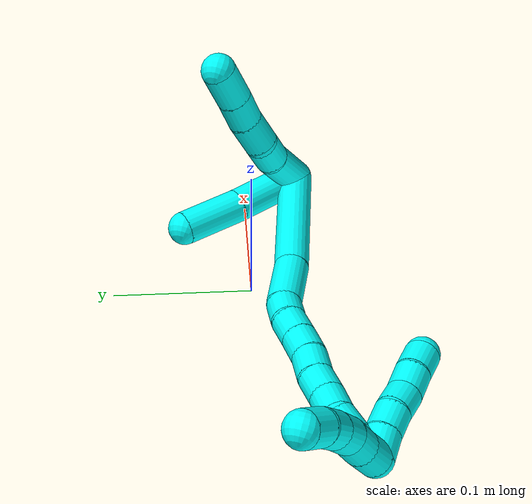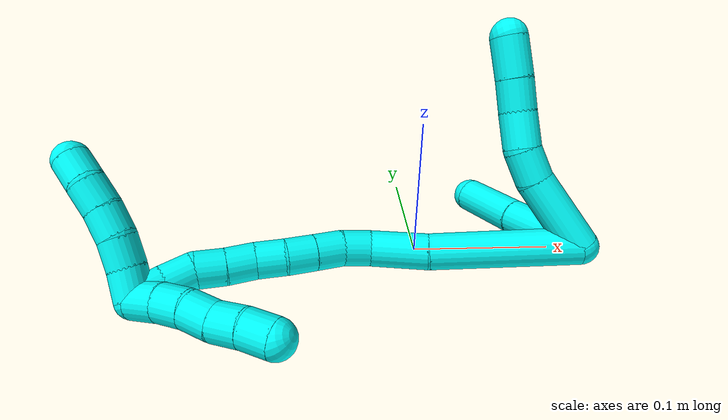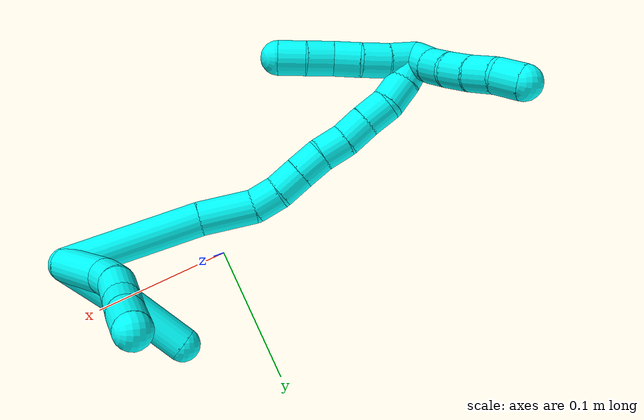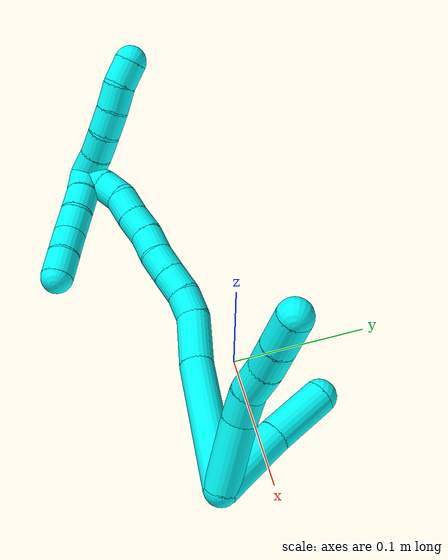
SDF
<sdf version="1.7">
 <world name="default">
  <model name="3">
   <static>0</static>
   <link name="3">
    <collision name="collision-cylinder-e_1_2_8">
     <pose>-0.024356 -0.008097 -0.005781 2.19084 -1.18299 -1.83388</pose>
     <geometry><cylinder><radius>0.0125</radius><length>0.05262</length></cylinder></geometry>
     <surface>
      <friction><ode><mu>1.16</mu><mu2>1.16</mu2><slip1>0</slip1><slip2>0</slip2></ode></friction>
      <contact><ode><kp>1e+06</kp><kd>1</kd><max_vel>0</max_vel><min_depth>0.001</min_depth></ode></contact>
     </surface>
    </collision>
    <visual name="visual-cylinder-e_1_2_8">
     <pose>-0.024356 -0.008097 -0.005781 2.19084 -1.18299 -1.83388</pose>
     <geometry><cylinder><radius>0.0125</radius><length>0.05262</length></cylinder></geometry>
     <material><ambient>0.003922 1 0.996078 1</ambient></material>
    </visual>
    <collision name="collision-cylinder-e_2_8_9">
     <pose>-0.059469 -0.019418 -0.01169 1.61044 -1.27941 -1.3176</pose>
     <geometry><cylinder><radius>0.0125</radius><length>0.022459</length></cylinder></geometry>
     <surface>
      <friction><ode><mu>1.16</mu><mu2>1.16</mu2><slip1>0</slip1><slip2>0</slip2></ode></friction>
      <contact><ode><kp>1e+06</kp><kd>1</kd><max_vel>0</max_vel><min_depth>0.001</min_depth></ode></contact>
     </surface>
    </collision>
    <visual name="visual-cylinder-e_2_8_9">
     <pose>-0.059469 -0.019418 -0.01169 1.61044 -1.27941 -1.3176</pose>
     <geometry><cylinder><radius>0.0125</radius><length>0.022459</length></cylinder></geometry>
     <material><ambient>0.003922 1 0.996078 1</ambient></material>
    </visual>
    <collision name="collision-cylinder-e_3_9_10">
     <pose>-0.082516 -0.023604 -0.009405 0.379331 -1.36244 -0.30878</pose>
     <geometry><cylinder><radius>0.0125</radius><length>0.025124</length></cylinder></geometry>
     <surface>
      <friction><ode><mu>1.16</mu><mu2>1.16</mu2><slip1>0</slip1><slip2>0</slip2></ode></friction>
      <contact><ode><kp>1e+06</kp><kd>1</kd><max_vel>0</max_vel><min_depth>0.001</min_depth></ode></contact>
     </surface>
    </collision>
    <visual name="visual-cylinder-e_3_9_10">
     <pose>-0.082516 -0.023604 -0.009405 0.379331 -1.36244 -0.30878</pose>
     <geometry><cylinder><radius>0.0125</radius><length>0.025124</length></cylinder></geometry>
     <material><ambient>0.003922 1 0.996078 1</ambient></material>
    </visual>
    <collision name="collision-cylinder-e_4_10_11">
     <pose>-0.105323 -0.026638 -0.004401 0.674864 -1.26528 -0.503548</pose>
     <geometry><cylinder><radius>0.0125</radius><length>0.022054</length></cylinder></geometry>
     <surface>
      <friction><ode><mu>1.16</mu><mu2>1.16</mu2><slip1>0</slip1><slip2>0</slip2></ode></friction>
      <contact><ode><kp>1e+06</kp><kd>1</kd><max_vel>0</max_vel><min_depth>0.001</min_depth></ode></contact>
     </surface>
    </collision>
    <visual name="visual-cylinder-e_4_10_11">
     <pose>-0.105323 -0.026638 -0.004401 0.674864 -1.26528 -0.503548</pose>
     <geometry><cylinder><radius>0.0125</radius><length>0.022054</length></cylinder></geometry>
     <material><ambient>0.003922 1 0.996078 1</ambient></material>
    </visual>
    <collision name="collision-cylinder-e_5_11_6">
     <pose>-0.129223 -0.031133 0.00091 0.727377 -1.30501 -0.566096</pose>
     <geometry><cylinder><radius>0.0125</radius><length>0.027742</length></cylinder></geometry>
     <surface>
      <friction><ode><mu>1.16</mu><mu2>1.16</mu2><slip1>0</slip1><slip2>0</slip2></ode></friction>
      <contact><ode><kp>1e+06</kp><kd>1</kd><max_vel>0</max_vel><min_depth>0.001</min_depth></ode></contact>
     </surface>
    </collision>
    <visual name="visual-cylinder-e_5_11_6">
     <pose>-0.129223 -0.031133 0.00091 0.727377 -1.30501 -0.566096</pose>
     <geometry><cylinder><radius>0.0125</radius><length>0.027742</length></cylinder></geometry>
     <material><ambient>0.003922 1 0.996078 1</ambient></material>
    </visual>
    <collision name="collision-cylinder-e_1_2_12">
     <pose>-0.015125 0.010306 -0.019944 -2.66465 -0.592885 1.79714</pose>
     <geometry><cylinder><radius>0.0125</radius><length>0.054139</length></cylinder></geometry>
     <surface>
      <friction><ode><mu>1.16</mu><mu2>1.16</mu2><slip1>0</slip1><slip2>0</slip2></ode></friction>
      <contact><ode><kp>1e+06</kp><kd>1</kd><max_vel>0</max_vel><min_depth>0.001</min_depth></ode></contact>
     </surface>
    </collision>
    <visual name="visual-cylinder-e_1_2_12">
     <pose>-0.015125 0.010306 -0.019944 -2.66465 -0.592885 1.79714</pose>
     <geometry><cylinder><radius>0.0125</radius><length>0.054139</length></cylinder></geometry>
     <material><ambient>0.003922 1 0.996078 1</ambient></material>
    </visual>
    <collision name="collision-cylinder-e_2_12_5">
     <pose>-0.043375 0.030543 -0.055855 -2.58515 -0.609393 1.66691</pose>
     <geometry><cylinder><radius>0.0125</radius><length>0.045861</length></cylinder></geometry>
     <surface>
      <friction><ode><mu>1.16</mu><mu2>1.16</mu2><slip1>0</slip1><slip2>0</slip2></ode></friction>
      <contact><ode><kp>1e+06</kp><kd>1</kd><max_vel>0</max_vel><min_depth>0.001</min_depth></ode></contact>
     </surface>
    </collision>
    <visual name="visual-cylinder-e_2_12_5">
     <pose>-0.043375 0.030543 -0.055855 -2.58515 -0.609393 1.66691</pose>
     <geometry><cylinder><radius>0.0125</radius><length>0.045861</length></cylinder></geometry>
     <material><ambient>0.003922 1 0.996078 1</ambient></material>
    </visual>
    <collision name="collision-cylinder-e_1_2_13">
     <pose>-0.010164 -0.020271 -0.044166 2.7113 -0.206176 -0.884308</pose>
     <geometry><cylinder><radius>0.0125</radius><length>0.099294</length></cylinder></geometry>
     <surface>
      <friction><ode><mu>1.16</mu><mu2>1.16</mu2><slip1>0</slip1><slip2>0</slip2></ode></friction>
      <contact><ode><kp>1e+06</kp><kd>1</kd><max_vel>0</max_vel><min_depth>0.001</min_depth></ode></contact>
     </surface>
    </collision>
    <visual name="visual-cylinder-e_1_2_13">
     <pose>-0.010164 -0.020271 -0.044166 2.7113 -0.206176 -0.884308</pose>
     <geometry><cylinder><radius>0.0125</radius><length>0.099294</length></cylinder></geometry>
     <material><ambient>0.003922 1 0.996078 1</ambient></material>
    </visual>
    <collision name="collision-cylinder-e_2_13_14">
     <pose>-0.02646 -0.047491 -0.106193 2.77056 -0.309664 -1.38751</pose>
     <geometry><cylinder><radius>0.0125</radius><length>0.040247</length></cylinder></geometry>
     <surface>
      <friction><ode><mu>1.16</mu><mu2>1.16</mu2><slip1>0</slip1><slip2>0</slip2></ode></friction>
      <contact><ode><kp>1e+06</kp><kd>1</kd><max_vel>0</max_vel><min_depth>0.001</min_depth></ode></contact>
     </surface>
    </collision>
    <visual name="visual-cylinder-e_2_13_14">
     <pose>-0.02646 -0.047491 -0.106193 2.77056 -0.309664 -1.38751</pose>
     <geometry><cylinder><radius>0.0125</radius><length>0.040247</length></cylinder></geometry>
     <material><ambient>0.003922 1 0.996078 1</ambient></material>
    </visual>
    <collision name="collision-cylinder-e_3_14_15">
     <pose>-0.034942 -0.060886 -0.131473 2.42621 -0.234699 -0.61107</pose>
     <geometry><cylinder><radius>0.0125</radius><length>0.020208</length></cylinder></geometry>
     <surface>
      <friction><ode><mu>1.16</mu><mu2>1.16</mu2><slip1>0</slip1><slip2>0</slip2></ode></friction>
      <contact><ode><kp>1e+06</kp><kd>1</kd><max_vel>0</max_vel><min_depth>0.001</min_depth></ode></contact>
     </surface>
    </collision>
    <visual name="visual-cylinder-e_3_14_15">
     <pose>-0.034942 -0.060886 -0.131473 2.42621 -0.234699 -0.61107</pose>
     <geometry><cylinder><radius>0.0125</radius><length>0.020208</length></cylinder></geometry>
     <material><ambient>0.003922 1 0.996078 1</ambient></material>
    </visual>
    <collision name="collision-cylinder-e_4_15_16">
     <pose>-0.03792 -0.074671 -0.14573 2.32092 -0.062553 -0.14359</pose>
     <geometry><cylinder><radius>0.0125</radius><length>0.020103</length></cylinder></geometry>
     <surface>
      <friction><ode><mu>1.16</mu><mu2>1.16</mu2><slip1>0</slip1><slip2>0</slip2></ode></friction>
      <contact><ode><kp>1e+06</kp><kd>1</kd><max_vel>0</max_vel><min_depth>0.001</min_depth></ode></contact>
     </surface>
    </collision>
    <visual name="visual-cylinder-e_4_15_16">
     <pose>-0.03792 -0.074671 -0.14573 2.32092 -0.062553 -0.14359</pose>
     <geometry><cylinder><radius>0.0125</radius><length>0.020103</length></cylinder></geometry>
     <material><ambient>0.003922 1 0.996078 1</ambient></material>
    </visual>
    <collision name="collision-cylinder-e_5_16_17">
     <pose>-0.039276 -0.089173 -0.159524 2.34151 -0.072796 -0.171811</pose>
     <geometry><cylinder><radius>0.0125</radius><length>0.020022</length></cylinder></geometry>
     <surface>
      <friction><ode><mu>1.16</mu><mu2>1.16</mu2><slip1>0</slip1><slip2>0</slip2></ode></friction>
      <contact><ode><kp>1e+06</kp><kd>1</kd><max_vel>0</max_vel><min_depth>0.001</min_depth></ode></contact>
     </surface>
    </collision>
    <visual name="visual-cylinder-e_5_16_17">
     <pose>-0.039276 -0.089173 -0.159524 2.34151 -0.072796 -0.171811</pose>
     <geometry><cylinder><radius>0.0125</radius><length>0.020022</length></cylinder></geometry>
     <material><ambient>0.003922 1 0.996078 1</ambient></material>
    </visual>
    <collision name="collision-cylinder-e_6_17_18">
     <pose>-0.04121 -0.10238 -0.1744 2.48972 -0.120476 -0.353163</pose>
     <geometry><cylinder><radius>0.0125</radius><length>0.020072</length></cylinder></geometry>
     <surface>
      <friction><ode><mu>1.16</mu><mu2>1.16</mu2><slip1>0</slip1><slip2>0</slip2></ode></friction>
      <contact><ode><kp>1e+06</kp><kd>1</kd><max_vel>0</max_vel><min_depth>0.001</min_depth></ode></contact>
     </surface>
    </collision>
    <visual name="visual-cylinder-e_6_17_18">
     <pose>-0.04121 -0.10238 -0.1744 2.48972 -0.120476 -0.353163</pose>
     <geometry><cylinder><radius>0.0125</radius><length>0.020072</length></cylinder></geometry>
     <material><ambient>0.003922 1 0.996078 1</ambient></material>
    </visual>
    <collision name="collision-cylinder-e_7_18_19">
     <pose>-0.042699 -0.115659 -0.189224 2.33281 -0.028276 -0.066049</pose>
     <geometry><cylinder><radius>0.0125</radius><length>0.020006</length></cylinder></geometry>
     <surface>
      <friction><ode><mu>1.16</mu><mu2>1.16</mu2><slip1>0</slip1><slip2>0</slip2></ode></friction>
      <contact><ode><kp>1e+06</kp><kd>1</kd><max_vel>0</max_vel><min_depth>0.001</min_depth></ode></contact>
     </surface>
    </collision>
    <visual name="visual-cylinder-e_7_18_19">
     <pose>-0.042699 -0.115659 -0.189224 2.33281 -0.028276 -0.066049</pose>
     <geometry><cylinder><radius>0.0125</radius><length>0.020006</length></cylinder></geometry>
     <material><ambient>0.003922 1 0.996078 1</ambient></material>
    </visual>
    <collision name="collision-cylinder-e_8_19_20">
     <pose>-0.044145 -0.12995 -0.203119 2.35151 -0.116502 -0.27792</pose>
     <geometry><cylinder><radius>0.0125</radius><length>0.020005</length></cylinder></geometry>
     <surface>
      <friction><ode><mu>1.16</mu><mu2>1.16</mu2><slip1>0</slip1><slip2>0</slip2></ode></friction>
      <contact><ode><kp>1e+06</kp><kd>1</kd><max_vel>0</max_vel><min_depth>0.001</min_depth></ode></contact>
     </surface>
    </collision>
    <visual name="visual-cylinder-e_8_19_20">
     <pose>-0.044145 -0.12995 -0.203119 2.35151 -0.116502 -0.27792</pose>
     <geometry><cylinder><radius>0.0125</radius><length>0.020005</length></cylinder></geometry>
     <material><ambient>0.003922 1 0.996078 1</ambient></material>
    </visual>
    <collision name="collision-cylinder-e_9_20_21">
     <pose>-0.043166 -0.144368 -0.216562 2.29054 0.21544 0.468445</pose>
     <geometry><cylinder><radius>0.0125</radius><length>0.020037</length></cylinder></geometry>
     <surface>
      <friction><ode><mu>1.16</mu><mu2>1.16</mu2><slip1>0</slip1><slip2>0</slip2></ode></friction>
      <contact><ode><kp>1e+06</kp><kd>1</kd><max_vel>0</max_vel><min_depth>0.001</min_depth></ode></contact>
     </surface>
    </collision>
    <visual name="visual-cylinder-e_9_20_21">
     <pose>-0.043166 -0.144368 -0.216562 2.29054 0.21544 0.468445</pose>
     <geometry><cylinder><radius>0.0125</radius><length>0.020037</length></cylinder></geometry>
     <material><ambient>0.003922 1 0.996078 1</ambient></material>
    </visual>
    <collision name="collision-cylinder-e_10_21_1">
     <pose>-0.03828 -0.159766 -0.228296 2.15216 0.277905 0.507327</pose>
     <geometry><cylinder><radius>0.0125</radius><length>0.020007</length></cylinder></geometry>
     <surface>
      <friction><ode><mu>1.16</mu><mu2>1.16</mu2><slip1>0</slip1><slip2>0</slip2></ode></friction>
      <contact><ode><kp>1e+06</kp><kd>1</kd><max_vel>0</max_vel><min_depth>0.001</min_depth></ode></contact>
     </surface>
    </collision>
    <visual name="visual-cylinder-e_10_21_1">
     <pose>-0.03828 -0.159766 -0.228296 2.15216 0.277905 0.507327</pose>
     <geometry><cylinder><radius>0.0125</radius><length>0.020007</length></cylinder></geometry>
     <material><ambient>0.003922 1 0.996078 1</ambient></material>
    </visual>
    <collision name="collision-cylinder-e_1_1_22">
     <pose>-0.045513 -0.168479 -0.233572 1.56022 -1.50338 -1.49283</pose>
     <geometry><cylinder><radius>0.0125</radius><length>0.02</length></cylinder></geometry>
     <surface>
      <friction><ode><mu>1.16</mu><mu2>1.16</mu2><slip1>0</slip1><slip2>0</slip2></ode></friction>
      <contact><ode><kp>1e+06</kp><kd>1</kd><max_vel>0</max_vel><min_depth>0.001</min_depth></ode></contact>
     </surface>
    </collision>
    <visual name="visual-cylinder-e_1_1_22">
     <pose>-0.045513 -0.168479 -0.233572 1.56022 -1.50338 -1.49283</pose>
     <geometry><cylinder><radius>0.0125</radius><length>0.02</length></cylinder></geometry>
     <material><ambient>0.003922 1 0.996078 1</ambient></material>
    </visual>
    <collision name="collision-cylinder-e_2_22_23">
     <pose>-0.065329 -0.170937 -0.233497 1.5328 -1.39125 -1.35399</pose>
     <geometry><cylinder><radius>0.0125</radius><length>0.02</length></cylinder></geometry>
     <surface>
      <friction><ode><mu>1.16</mu><mu2>1.16</mu2><slip1>0</slip1><slip2>0</slip2></ode></friction>
      <contact><ode><kp>1e+06</kp><kd>1</kd><max_vel>0</max_vel><min_depth>0.001</min_depth></ode></contact>
     </surface>
    </collision>
    <visual name="visual-cylinder-e_2_22_23">
     <pose>-0.065329 -0.170937 -0.233497 1.5328 -1.39125 -1.35399</pose>
     <geometry><cylinder><radius>0.0125</radius><length>0.02</length></cylinder></geometry>
     <material><ambient>0.003922 1 0.996078 1</ambient></material>
    </visual>
    <collision name="collision-cylinder-e_3_23_24">
     <pose>-0.084824 -0.174602 -0.235228 2.33409 -1.30749 -2.12422</pose>
     <geometry><cylinder><radius>0.0125</radius><length>0.02</length></cylinder></geometry>
     <surface>
      <friction><ode><mu>1.16</mu><mu2>1.16</mu2><slip1>0</slip1><slip2>0</slip2></ode></friction>
      <contact><ode><kp>1e+06</kp><kd>1</kd><max_vel>0</max_vel><min_depth>0.001</min_depth></ode></contact>
     </surface>
    </collision>
    <visual name="visual-cylinder-e_3_23_24">
     <pose>-0.084824 -0.174602 -0.235228 2.33409 -1.30749 -2.12422</pose>
     <geometry><cylinder><radius>0.0125</radius><length>0.02</length></cylinder></geometry>
     <material><ambient>0.003922 1 0.996078 1</ambient></material>
    </visual>
    <collision name="collision-cylinder-e_4_24_25">
     <pose>-0.103807 -0.178929 -0.239676 2.39597 -1.202 -2.10479</pose>
     <geometry><cylinder><radius>0.0125</radius><length>0.02</length></cylinder></geometry>
     <surface>
      <friction><ode><mu>1.16</mu><mu2>1.16</mu2><slip1>0</slip1><slip2>0</slip2></ode></friction>
      <contact><ode><kp>1e+06</kp><kd>1</kd><max_vel>0</max_vel><min_depth>0.001</min_depth></ode></contact>
     </surface>
    </collision>
    <visual name="visual-cylinder-e_4_24_25">
     <pose>-0.103807 -0.178929 -0.239676 2.39597 -1.202 -2.10479</pose>
     <geometry><cylinder><radius>0.0125</radius><length>0.02</length></cylinder></geometry>
     <material><ambient>0.003922 1 0.996078 1</ambient></material>
    </visual>
    <collision name="collision-cylinder-e_5_25_4">
     <pose>-0.122155 -0.182139 -0.246573 2.96348 -1.1245 -2.86003</pose>
     <geometry><cylinder><radius>0.0125</radius><length>0.02</length></cylinder></geometry>
     <surface>
      <friction><ode><mu>1.16</mu><mu2>1.16</mu2><slip1>0</slip1><slip2>0</slip2></ode></friction>
      <contact><ode><kp>1e+06</kp><kd>1</kd><max_vel>0</max_vel><min_depth>0.001</min_depth></ode></contact>
     </surface>
    </collision>
    <visual name="visual-cylinder-e_5_25_4">
     <pose>-0.122155 -0.182139 -0.246573 2.96348 -1.1245 -2.86003</pose>
     <geometry><cylinder><radius>0.0125</radius><length>0.02</length></cylinder></geometry>
     <material><ambient>0.003922 1 0.996078 1</ambient></material>
    </visual>
    <collision name="collision-cylinder-e_1_1_26">
     <pose>-0.032552 -0.166005 -0.224206 -0.189823 0.30295 -0.029061</pose>
     <geometry><cylinder><radius>0.0125</radius><length>0.02</length></cylinder></geometry>
     <surface>
      <friction><ode><mu>1.16</mu><mu2>1.16</mu2><slip1>0</slip1><slip2>0</slip2></ode></friction>
      <contact><ode><kp>1e+06</kp><kd>1</kd><max_vel>0</max_vel><min_depth>0.001</min_depth></ode></contact>
     </surface>
    </collision>
    <visual name="visual-cylinder-e_1_1_26">
     <pose>-0.032552 -0.166005 -0.224206 -0.189823 0.30295 -0.029061</pose>
     <geometry><cylinder><radius>0.0125</radius><length>0.02</length></cylinder></geometry>
     <material><ambient>0.003922 1 0.996078 1</ambient></material>
    </visual>
    <collision name="collision-cylinder-e_2_26_27">
     <pose>-0.025728 -0.162992 -0.20568 -0.131599 0.39421 -0.026316</pose>
     <geometry><cylinder><radius>0.0125</radius><length>0.02</length></cylinder></geometry>
     <surface>
      <friction><ode><mu>1.16</mu><mu2>1.16</mu2><slip1>0</slip1><slip2>0</slip2></ode></friction>
      <contact><ode><kp>1e+06</kp><kd>1</kd><max_vel>0</max_vel><min_depth>0.001</min_depth></ode></contact>
     </surface>
    </collision>
    <visual name="visual-cylinder-e_2_26_27">
     <pose>-0.025728 -0.162992 -0.20568 -0.131599 0.39421 -0.026316</pose>
     <geometry><cylinder><radius>0.0125</radius><length>0.02</length></cylinder></geometry>
     <material><ambient>0.003922 1 0.996078 1</ambient></material>
    </visual>
    <collision name="collision-cylinder-e_3_27_28">
     <pose>-0.016444 -0.160341 -0.188262 -0.172391 0.575549 -0.051142</pose>
     <geometry><cylinder><radius>0.0125</radius><length>0.02</length></cylinder></geometry>
     <surface>
      <friction><ode><mu>1.16</mu><mu2>1.16</mu2><slip1>0</slip1><slip2>0</slip2></ode></friction>
      <contact><ode><kp>1e+06</kp><kd>1</kd><max_vel>0</max_vel><min_depth>0.001</min_depth></ode></contact>
     </surface>
    </collision>
    <visual name="visual-cylinder-e_3_27_28">
     <pose>-0.016444 -0.160341 -0.188262 -0.172391 0.575549 -0.051142</pose>
     <geometry><cylinder><radius>0.0125</radius><length>0.02</length></cylinder></geometry>
     <material><ambient>0.003922 1 0.996078 1</ambient></material>
    </visual>
    <collision name="collision-cylinder-e_4_28_29">
     <pose>-0.007379 -0.15765 -0.170761 -0.134826 0.370594 -0.02531</pose>
     <geometry><cylinder><radius>0.0125</radius><length>0.02</length></cylinder></geometry>
     <surface>
      <friction><ode><mu>1.16</mu><mu2>1.16</mu2><slip1>0</slip1><slip2>0</slip2></ode></friction>
      <contact><ode><kp>1e+06</kp><kd>1</kd><max_vel>0</max_vel><min_depth>0.001</min_depth></ode></contact>
     </surface>
    </collision>
    <visual name="visual-cylinder-e_4_28_29">
     <pose>-0.007379 -0.15765 -0.170761 -0.134826 0.370594 -0.02531</pose>
     <geometry><cylinder><radius>0.0125</radius><length>0.02</length></cylinder></geometry>
     <material><ambient>0.003922 1 0.996078 1</ambient></material>
    </visual>
    <collision name="collision-cylinder-e_5_29_3">
     <pose>0.000984 -0.154846 -0.152858 -0.177041 0.494048 -0.044755</pose>
     <geometry><cylinder><radius>0.0125</radius><length>0.02</length></cylinder></geometry>
     <surface>
      <friction><ode><mu>1.16</mu><mu2>1.16</mu2><slip1>0</slip1><slip2>0</slip2></ode></friction>
      <contact><ode><kp>1e+06</kp><kd>1</kd><max_vel>0</max_vel><min_depth>0.001</min_depth></ode></contact>
     </surface>
    </collision>
    <visual name="visual-cylinder-e_5_29_3">
     <pose>0.000984 -0.154846 -0.152858 -0.177041 0.494048 -0.044755</pose>
     <geometry><cylinder><radius>0.0125</radius><length>0.02</length></cylinder></geometry>
     <material><ambient>0.003922 1 0.996078 1</ambient></material>
    </visual>
    <collision name="collision-sphere-3">
     <pose>0.005726 -0.153295 -0.144191 0 -0 0</pose>
     <geometry><sphere><radius>0.0125</radius></sphere></geometry>
     <surface>
      <friction><ode><mu>1.16</mu><mu2>1.16</mu2><slip1>0</slip1><slip2>0</slip2></ode></friction>
      <contact><ode><kp>1e+06</kp><kd>1</kd><max_vel>0</max_vel><min_depth>0.001</min_depth></ode></contact>
     </surface>
    </collision>
    <visual name="visual-sphere-3">
     <pose>0.005726 -0.153295 -0.144191 0 -0 0</pose>
     <geometry><sphere><radius>0.0125</radius></sphere></geometry>
     <material><ambient>0.003922 1 0.996078 1</ambient></material>
    </visual>
    <collision name="collision-sphere-29">
     <pose>-0.003758 -0.156397 -0.161524 0 -0 0</pose>
     <geometry><sphere><radius>0.0125</radius></sphere></geometry>
     <surface>
      <friction><ode><mu>1.16</mu><mu2>1.16</mu2><slip1>0</slip1><slip2>0</slip2></ode></friction>
      <contact><ode><kp>1e+06</kp><kd>1</kd><max_vel>0</max_vel><min_depth>0.001</min_depth></ode></contact>
     </surface>
    </collision>
    <visual name="visual-sphere-29">
     <pose>-0.003758 -0.156397 -0.161524 0 -0 0</pose>
     <geometry><sphere><radius>0.0125</radius></sphere></geometry>
     <material><ambient>0.003922 1 0.996078 1</ambient></material>
    </visual>
    <collision name="collision-sphere-28">
     <pose>-0.011001 -0.158902 -0.179997 0 -0 0</pose>
     <geometry><sphere><radius>0.0125</radius></sphere></geometry>
     <surface>
      <friction><ode><mu>1.16</mu><mu2>1.16</mu2><slip1>0</slip1><slip2>0</slip2></ode></friction>
      <contact><ode><kp>1e+06</kp><kd>1</kd><max_vel>0</max_vel><min_depth>0.001</min_depth></ode></contact>
     </surface>
    </collision>
    <visual name="visual-sphere-28">
     <pose>-0.011001 -0.158902 -0.179997 0 -0 0</pose>
     <geometry><sphere><radius>0.0125</radius></sphere></geometry>
     <material><ambient>0.003922 1 0.996078 1</ambient></material>
    </visual>
    <collision name="collision-sphere-27">
     <pose>-0.021887 -0.16178 -0.196526 0 -0 0</pose>
     <geometry><sphere><radius>0.0125</radius></sphere></geometry>
     <surface>
      <friction><ode><mu>1.16</mu><mu2>1.16</mu2><slip1>0</slip1><slip2>0</slip2></ode></friction>
      <contact><ode><kp>1e+06</kp><kd>1</kd><max_vel>0</max_vel><min_depth>0.001</min_depth></ode></contact>
     </surface>
    </collision>
    <visual name="visual-sphere-27">
     <pose>-0.021887 -0.16178 -0.196526 0 -0 0</pose>
     <geometry><sphere><radius>0.0125</radius></sphere></geometry>
     <material><ambient>0.003922 1 0.996078 1</ambient></material>
    </visual>
    <collision name="collision-sphere-26">
     <pose>-0.029569 -0.164204 -0.214833 0 -0 0</pose>
     <geometry><sphere><radius>0.0125</radius></sphere></geometry>
     <surface>
      <friction><ode><mu>1.16</mu><mu2>1.16</mu2><slip1>0</slip1><slip2>0</slip2></ode></friction>
      <contact><ode><kp>1e+06</kp><kd>1</kd><max_vel>0</max_vel><min_depth>0.001</min_depth></ode></contact>
     </surface>
    </collision>
    <visual name="visual-sphere-26">
     <pose>-0.029569 -0.164204 -0.214833 0 -0 0</pose>
     <geometry><sphere><radius>0.0125</radius></sphere></geometry>
     <material><ambient>0.003922 1 0.996078 1</ambient></material>
    </visual>
    <collision name="collision-sphere-4">
     <pose>-0.131175 -0.182904 -0.250821 0 -0 0</pose>
     <geometry><sphere><radius>0.0125</radius></sphere></geometry>
     <surface>
      <friction><ode><mu>1.16</mu><mu2>1.16</mu2><slip1>0</slip1><slip2>0</slip2></ode></friction>
      <contact><ode><kp>1e+06</kp><kd>1</kd><max_vel>0</max_vel><min_depth>0.001</min_depth></ode></contact>
     </surface>
    </collision>
    <visual name="visual-sphere-4">
     <pose>-0.131175 -0.182904 -0.250821 0 -0 0</pose>
     <geometry><sphere><radius>0.0125</radius></sphere></geometry>
     <material><ambient>0.003922 1 0.996078 1</ambient></material>
    </visual>
    <collision name="collision-sphere-25">
     <pose>-0.113134 -0.181374 -0.242325 0 -0 0</pose>
     <geometry><sphere><radius>0.0125</radius></sphere></geometry>
     <surface>
      <friction><ode><mu>1.16</mu><mu2>1.16</mu2><slip1>0</slip1><slip2>0</slip2></ode></friction>
      <contact><ode><kp>1e+06</kp><kd>1</kd><max_vel>0</max_vel><min_depth>0.001</min_depth></ode></contact>
     </surface>
    </collision>
    <visual name="visual-sphere-25">
     <pose>-0.113134 -0.181374 -0.242325 0 -0 0</pose>
     <geometry><sphere><radius>0.0125</radius></sphere></geometry>
     <material><ambient>0.003922 1 0.996078 1</ambient></material>
    </visual>
    <collision name="collision-sphere-24">
     <pose>-0.094479 -0.176483 -0.237028 0 -0 0</pose>
     <geometry><sphere><radius>0.0125</radius></sphere></geometry>
     <surface>
      <friction><ode><mu>1.16</mu><mu2>1.16</mu2><slip1>0</slip1><slip2>0</slip2></ode></friction>
      <contact><ode><kp>1e+06</kp><kd>1</kd><max_vel>0</max_vel><min_depth>0.001</min_depth></ode></contact>
     </surface>
    </collision>
    <visual name="visual-sphere-24">
     <pose>-0.094479 -0.176483 -0.237028 0 -0 0</pose>
     <geometry><sphere><radius>0.0125</radius></sphere></geometry>
     <material><ambient>0.003922 1 0.996078 1</ambient></material>
    </visual>
    <collision name="collision-sphere-23">
     <pose>-0.075168 -0.172722 -0.233429 0 -0 0</pose>
     <geometry><sphere><radius>0.0125</radius></sphere></geometry>
     <surface>
      <friction><ode><mu>1.16</mu><mu2>1.16</mu2><slip1>0</slip1><slip2>0</slip2></ode></friction>
      <contact><ode><kp>1e+06</kp><kd>1</kd><max_vel>0</max_vel><min_depth>0.001</min_depth></ode></contact>
     </surface>
    </collision>
    <visual name="visual-sphere-23">
     <pose>-0.075168 -0.172722 -0.233429 0 -0 0</pose>
     <geometry><sphere><radius>0.0125</radius></sphere></geometry>
     <material><ambient>0.003922 1 0.996078 1</ambient></material>
    </visual>
    <collision name="collision-sphere-22">
     <pose>-0.05549 -0.169153 -0.233565 0 -0 0</pose>
     <geometry><sphere><radius>0.0125</radius></sphere></geometry>
     <surface>
      <friction><ode><mu>1.16</mu><mu2>1.16</mu2><slip1>0</slip1><slip2>0</slip2></ode></friction>
      <contact><ode><kp>1e+06</kp><kd>1</kd><max_vel>0</max_vel><min_depth>0.001</min_depth></ode></contact>
     </surface>
    </collision>
    <visual name="visual-sphere-22">
     <pose>-0.05549 -0.169153 -0.233565 0 -0 0</pose>
     <geometry><sphere><radius>0.0125</radius></sphere></geometry>
     <material><ambient>0.003922 1 0.996078 1</ambient></material>
    </visual>
    <collision name="collision-sphere-1">
     <pose>-0.035535 -0.167805 -0.233579 0 -0 0</pose>
     <geometry><sphere><radius>0.0125</radius></sphere></geometry>
     <surface>
      <friction><ode><mu>1.16</mu><mu2>1.16</mu2><slip1>0</slip1><slip2>0</slip2></ode></friction>
      <contact><ode><kp>1e+06</kp><kd>1</kd><max_vel>0</max_vel><min_depth>0.001</min_depth></ode></contact>
     </surface>
    </collision>
    <visual name="visual-sphere-1">
     <pose>-0.035535 -0.167805 -0.233579 0 -0 0</pose>
     <geometry><sphere><radius>0.0125</radius></sphere></geometry>
     <material><ambient>0.003922 1 0.996078 1</ambient></material>
    </visual>
    <collision name="collision-sphere-21">
     <pose>-0.041024 -0.151727 -0.223014 0 -0 0</pose>
     <geometry><sphere><radius>0.0125</radius></sphere></geometry>
     <surface>
      <friction><ode><mu>1.16</mu><mu2>1.16</mu2><slip1>0</slip1><slip2>0</slip2></ode></friction>
      <contact><ode><kp>1e+06</kp><kd>1</kd><max_vel>0</max_vel><min_depth>0.001</min_depth></ode></contact>
     </surface>
    </collision>
    <visual name="visual-sphere-21">
     <pose>-0.041024 -0.151727 -0.223014 0 -0 0</pose>
     <geometry><sphere><radius>0.0125</radius></sphere></geometry>
     <material><ambient>0.003922 1 0.996078 1</ambient></material>
    </visual>
    <collision name="collision-sphere-6">
     <pose>-0.142607 -0.033556 0.003631 0 -0 0</pose>
     <geometry><sphere><radius>0.0125</radius></sphere></geometry>
     <surface>
      <friction><ode><mu>1.16</mu><mu2>1.16</mu2><slip1>0</slip1><slip2>0</slip2></ode></friction>
      <contact><ode><kp>1e+06</kp><kd>1</kd><max_vel>0</max_vel><min_depth>0.001</min_depth></ode></contact>
     </surface>
    </collision>
    <visual name="visual-sphere-6">
     <pose>-0.142607 -0.033556 0.003631 0 -0 0</pose>
     <geometry><sphere><radius>0.0125</radius></sphere></geometry>
     <material><ambient>0.003922 1 0.996078 1</ambient></material>
    </visual>
    <collision name="collision-sphere-11">
     <pose>-0.115839 -0.028711 -0.001811 0 -0 0</pose>
     <geometry><sphere><radius>0.0125</radius></sphere></geometry>
     <surface>
      <friction><ode><mu>1.16</mu><mu2>1.16</mu2><slip1>0</slip1><slip2>0</slip2></ode></friction>
      <contact><ode><kp>1e+06</kp><kd>1</kd><max_vel>0</max_vel><min_depth>0.001</min_depth></ode></contact>
     </surface>
    </collision>
    <visual name="visual-sphere-11">
     <pose>-0.115839 -0.028711 -0.001811 0 -0 0</pose>
     <geometry><sphere><radius>0.0125</radius></sphere></geometry>
     <material><ambient>0.003922 1 0.996078 1</ambient></material>
    </visual>
    <collision name="collision-sphere-10">
     <pose>-0.094806 -0.024566 -0.006991 0 -0 0</pose>
     <geometry><sphere><radius>0.0125</radius></sphere></geometry>
     <surface>
      <friction><ode><mu>1.16</mu><mu2>1.16</mu2><slip1>0</slip1><slip2>0</slip2></ode></friction>
      <contact><ode><kp>1e+06</kp><kd>1</kd><max_vel>0</max_vel><min_depth>0.001</min_depth></ode></contact>
     </surface>
    </collision>
    <visual name="visual-sphere-10">
     <pose>-0.094806 -0.024566 -0.006991 0 -0 0</pose>
     <geometry><sphere><radius>0.0125</radius></sphere></geometry>
     <material><ambient>0.003922 1 0.996078 1</ambient></material>
    </visual>
    <collision name="collision-sphere-9">
     <pose>-0.070225 -0.022642 -0.011818 0 -0 0</pose>
     <geometry><sphere><radius>0.0125</radius></sphere></geometry>
     <surface>
      <friction><ode><mu>1.16</mu><mu2>1.16</mu2><slip1>0</slip1><slip2>0</slip2></ode></friction>
      <contact><ode><kp>1e+06</kp><kd>1</kd><max_vel>0</max_vel><min_depth>0.001</min_depth></ode></contact>
     </surface>
    </collision>
    <visual name="visual-sphere-9">
     <pose>-0.070225 -0.022642 -0.011818 0 -0 0</pose>
     <geometry><sphere><radius>0.0125</radius></sphere></geometry>
     <material><ambient>0.003922 1 0.996078 1</ambient></material>
    </visual>
    <collision name="collision-sphere-2">
     <geometry><sphere><radius>0.0125</radius></sphere></geometry>
     <surface>
      <friction><ode><mu>1.16</mu><mu2>1.16</mu2><slip1>0</slip1><slip2>0</slip2></ode></friction>
      <contact><ode><kp>1e+06</kp><kd>1</kd><max_vel>0</max_vel><min_depth>0.001</min_depth></ode></contact>
     </surface>
    </collision>
    <visual name="visual-sphere-2">
     <geometry><sphere><radius>0.0125</radius></sphere></geometry>
     <material><ambient>0.003922 1 0.996078 1</ambient></material>
    </visual>
    <collision name="collision-sphere-19">
     <pose>-0.042982 -0.122893 -0.196127 0 -0 0</pose>
     <geometry><sphere><radius>0.0125</radius></sphere></geometry>
     <surface>
      <friction><ode><mu>1.16</mu><mu2>1.16</mu2><slip1>0</slip1><slip2>0</slip2></ode></friction>
      <contact><ode><kp>1e+06</kp><kd>1</kd><max_vel>0</max_vel><min_depth>0.001</min_depth></ode></contact>
     </surface>
    </collision>
    <visual name="visual-sphere-19">
     <pose>-0.042982 -0.122893 -0.196127 0 -0 0</pose>
     <geometry><sphere><radius>0.0125</radius></sphere></geometry>
     <material><ambient>0.003922 1 0.996078 1</ambient></material>
    </visual>
    <collision name="collision-sphere-8">
     <pose>-0.048713 -0.016195 -0.011563 0 -0 0</pose>
     <geometry><sphere><radius>0.0125</radius></sphere></geometry>
     <surface>
      <friction><ode><mu>1.16</mu><mu2>1.16</mu2><slip1>0</slip1><slip2>0</slip2></ode></friction>
      <contact><ode><kp>1e+06</kp><kd>1</kd><max_vel>0</max_vel><min_depth>0.001</min_depth></ode></contact>
     </surface>
    </collision>
    <visual name="visual-sphere-8">
     <pose>-0.048713 -0.016195 -0.011563 0 -0 0</pose>
     <geometry><sphere><radius>0.0125</radius></sphere></geometry>
     <material><ambient>0.003922 1 0.996078 1</ambient></material>
    </visual>
    <collision name="collision-sphere-12">
     <pose>-0.030251 0.020612 -0.039889 0 -0 0</pose>
     <geometry><sphere><radius>0.0125</radius></sphere></geometry>
     <surface>
      <friction><ode><mu>1.16</mu><mu2>1.16</mu2><slip1>0</slip1><slip2>0</slip2></ode></friction>
      <contact><ode><kp>1e+06</kp><kd>1</kd><max_vel>0</max_vel><min_depth>0.001</min_depth></ode></contact>
     </surface>
    </collision>
    <visual name="visual-sphere-12">
     <pose>-0.030251 0.020612 -0.039889 0 -0 0</pose>
     <geometry><sphere><radius>0.0125</radius></sphere></geometry>
     <material><ambient>0.003922 1 0.996078 1</ambient></material>
    </visual>
    <collision name="collision-sphere-5">
     <pose>-0.0565 0.040474 -0.071821 0 -0 0</pose>
     <geometry><sphere><radius>0.0125</radius></sphere></geometry>
     <surface>
      <friction><ode><mu>1.16</mu><mu2>1.16</mu2><slip1>0</slip1><slip2>0</slip2></ode></friction>
      <contact><ode><kp>1e+06</kp><kd>1</kd><max_vel>0</max_vel><min_depth>0.001</min_depth></ode></contact>
     </surface>
    </collision>
    <visual name="visual-sphere-5">
     <pose>-0.0565 0.040474 -0.071821 0 -0 0</pose>
     <geometry><sphere><radius>0.0125</radius></sphere></geometry>
     <material><ambient>0.003922 1 0.996078 1</ambient></material>
    </visual>
    <collision name="collision-sphere-13">
     <pose>-0.020327 -0.040542 -0.088331 0 -0 0</pose>
     <geometry><sphere><radius>0.0125</radius></sphere></geometry>
     <surface>
      <friction><ode><mu>1.16</mu><mu2>1.16</mu2><slip1>0</slip1><slip2>0</slip2></ode></friction>
      <contact><ode><kp>1e+06</kp><kd>1</kd><max_vel>0</max_vel><min_depth>0.001</min_depth></ode></contact>
     </surface>
    </collision>
    <visual name="visual-sphere-13">
     <pose>-0.020327 -0.040542 -0.088331 0 -0 0</pose>
     <geometry><sphere><radius>0.0125</radius></sphere></geometry>
     <material><ambient>0.003922 1 0.996078 1</ambient></material>
    </visual>
    <collision name="collision-sphere-14">
     <pose>-0.032592 -0.05444 -0.124055 0 -0 0</pose>
     <geometry><sphere><radius>0.0125</radius></sphere></geometry>
     <surface>
      <friction><ode><mu>1.16</mu><mu2>1.16</mu2><slip1>0</slip1><slip2>0</slip2></ode></friction>
      <contact><ode><kp>1e+06</kp><kd>1</kd><max_vel>0</max_vel><min_depth>0.001</min_depth></ode></contact>
     </surface>
    </collision>
    <visual name="visual-sphere-14">
     <pose>-0.032592 -0.05444 -0.124055 0 -0 0</pose>
     <geometry><sphere><radius>0.0125</radius></sphere></geometry>
     <material><ambient>0.003922 1 0.996078 1</ambient></material>
    </visual>
    <collision name="collision-sphere-15">
     <pose>-0.037291 -0.067331 -0.138891 0 -0 0</pose>
     <geometry><sphere><radius>0.0125</radius></sphere></geometry>
     <surface>
      <friction><ode><mu>1.16</mu><mu2>1.16</mu2><slip1>0</slip1><slip2>0</slip2></ode></friction>
      <contact><ode><kp>1e+06</kp><kd>1</kd><max_vel>0</max_vel><min_depth>0.001</min_depth></ode></contact>
     </surface>
    </collision>
    <visual name="visual-sphere-15">
     <pose>-0.037291 -0.067331 -0.138891 0 -0 0</pose>
     <geometry><sphere><radius>0.0125</radius></sphere></geometry>
     <material><ambient>0.003922 1 0.996078 1</ambient></material>
    </visual>
    <collision name="collision-sphere-16">
     <pose>-0.038548 -0.08201 -0.152569 0 -0 0</pose>
     <geometry><sphere><radius>0.0125</radius></sphere></geometry>
     <surface>
      <friction><ode><mu>1.16</mu><mu2>1.16</mu2><slip1>0</slip1><slip2>0</slip2></ode></friction>
      <contact><ode><kp>1e+06</kp><kd>1</kd><max_vel>0</max_vel><min_depth>0.001</min_depth></ode></contact>
     </surface>
    </collision>
    <visual name="visual-sphere-16">
     <pose>-0.038548 -0.08201 -0.152569 0 -0 0</pose>
     <geometry><sphere><radius>0.0125</radius></sphere></geometry>
     <material><ambient>0.003922 1 0.996078 1</ambient></material>
    </visual>
    <collision name="collision-sphere-17">
     <pose>-0.040004 -0.096336 -0.16648 0 -0 0</pose>
     <geometry><sphere><radius>0.0125</radius></sphere></geometry>
     <surface>
      <friction><ode><mu>1.16</mu><mu2>1.16</mu2><slip1>0</slip1><slip2>0</slip2></ode></friction>
      <contact><ode><kp>1e+06</kp><kd>1</kd><max_vel>0</max_vel><min_depth>0.001</min_depth></ode></contact>
     </surface>
    </collision>
    <visual name="visual-sphere-17">
     <pose>-0.040004 -0.096336 -0.16648 0 -0 0</pose>
     <geometry><sphere><radius>0.0125</radius></sphere></geometry>
     <material><ambient>0.003922 1 0.996078 1</ambient></material>
    </visual>
    <collision name="collision-sphere-18">
     <pose>-0.042417 -0.108425 -0.18232 0 -0 0</pose>
     <geometry><sphere><radius>0.0125</radius></sphere></geometry>
     <surface>
      <friction><ode><mu>1.16</mu><mu2>1.16</mu2><slip1>0</slip1><slip2>0</slip2></ode></friction>
      <contact><ode><kp>1e+06</kp><kd>1</kd><max_vel>0</max_vel><min_depth>0.001</min_depth></ode></contact>
     </surface>
    </collision>
    <visual name="visual-sphere-18">
     <pose>-0.042417 -0.108425 -0.18232 0 -0 0</pose>
     <geometry><sphere><radius>0.0125</radius></sphere></geometry>
     <material><ambient>0.003922 1 0.996078 1</ambient></material>
    </visual>
    <collision name="collision-sphere-20">
     <pose>-0.045308 -0.137008 -0.210111 0 -0 0</pose>
     <geometry><sphere><radius>0.0125</radius></sphere></geometry>
     <surface>
      <friction><ode><mu>1.16</mu><mu2>1.16</mu2><slip1>0</slip1><slip2>0</slip2></ode></friction>
      <contact><ode><kp>1e+06</kp><kd>1</kd><max_vel>0</max_vel><min_depth>0.001</min_depth></ode></contact>
     </surface>
    </collision>
    <visual name="visual-sphere-20">
     <pose>-0.045308 -0.137008 -0.210111 0 -0 0</pose>
     <geometry><sphere><radius>0.0125</radius></sphere></geometry>
     <material><ambient>0.003922 1 0.996078 1</ambient></material>
    </visual>
    <inertial>
     <pose>-0.042647 -0.074646 -0.113091 0 -0 0</pose>
     <mass>0.75</mass>
     <inertia>
      <ixx>-1.5e-05</ixx>
      <ixy>0</ixy>
      <ixz>0</ixz>
      <iyy>-7.8e-05</iyy>
      <iyz>0</iyz>
      <izz>8.3e-05</izz>
     </inertia>
    </inertial>
   </link>
   <pose>0.102591 -0.039096 0.027375 -0.716525 0.883584 -1.21112</pose>
  </model>
 </world>
</sdf>
